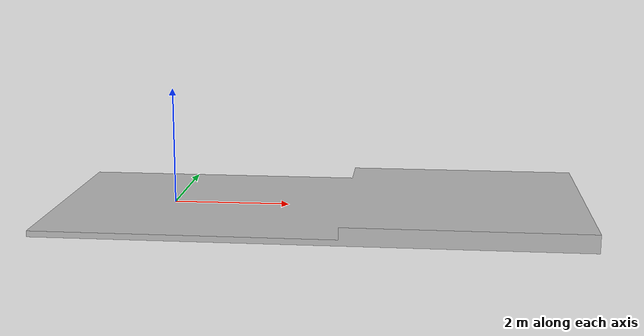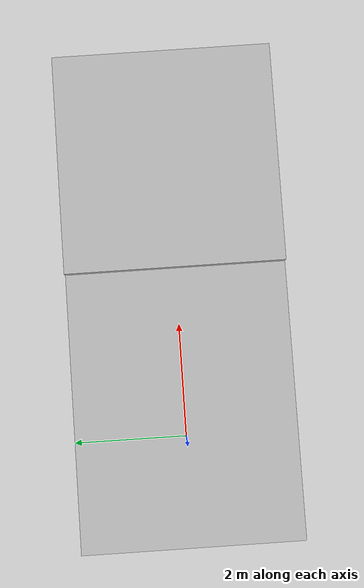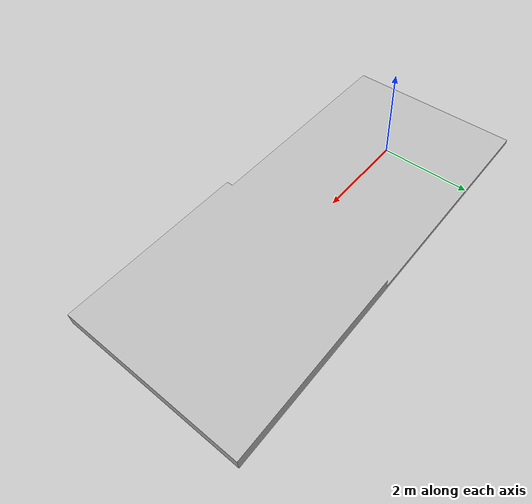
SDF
<?xml version="1.0"?>
<sdf version='1.6'>
  <world name='default'>
    <physics type="ode">
    <max_step_size>0.001</max_step_size>
    <real_time_factor>1</real_time_factor>
    <real_time_update_rate>1000</real_time_update_rate>
        <ode>
            <solver>
              <iters>300</iters>
            </solver>
        </ode>
    </physics>

    <scene>
      <shadows>false</shadows>
    </scene>

    <gravity>0 0 -9.81</gravity>

    <!-- Add system-level physics and sensor plugins to each world -->
    <plugin
      filename="ignition-gazebo-physics-system"
      name="ignition::gazebo::systems::Physics">
    </plugin>

    <plugin
      filename="ignition-gazebo-scene-broadcaster-system"
      name="ignition::gazebo::systems::SceneBroadcaster">
    </plugin>

    <plugin
      filename="ignition-gazebo-sensors-system"
      name="ignition::gazebo::systems::Sensors"/>

    <plugin
      filename="ignition-gazebo-user-commands-system"
      name="ignition::gazebo::systems::UserCommands"/>
    <plugin
      filename="libignition-gazebo-contact-system.so"
      name="ignition::gazebo::systems::Contact">
    </plugin>

    <plugin
      filename="libignition-gazebo-imu-system.so"
      name="ignition::gazebo::systems::Imu">
    </plugin>

    <plugin
      filename="libignition-gazebo-forcetorque-system.so"
      name="ignition::gazebo::systems::ForceTorque"/>

    <light name="sun" type="directional">
      <cast_shadows>true</cast_shadows>
      <pose>0 0 10 0 0 0</pose>
      <diffuse>1 1 1 1</diffuse>
      <specular>0.1 0.1 0.1 1</specular>
      <direction>-1 0 -1</direction>
    </light>

    <include>
      <uri>model://step_20cm</uri>
      <pose>-1.975 -2 -0.1  0 0 0</pose>
    </include>
  </world>
</sdf>

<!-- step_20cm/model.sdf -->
<sdf version="1.6">
    <model name="step_20cm">
      <static>true</static>
      <link name="body">
        <visual name="visual">
          <geometry>
            <mesh>
                <uri>meshes/step_20cm.stl</uri>
            </mesh>
          </geometry>
        </visual>
        <collision name="collision">
          <geometry>
            <mesh>
                <uri>meshes/step_20cm.stl</uri>
            </mesh>
          </geometry>
          <surface>
            <friction>
              <ode>
                <mu>100</mu>
                <mu2>100</mu2>
              </ode>
            </friction>
          </surface>
        </collision>
      </link>
    </model>
</sdf>
